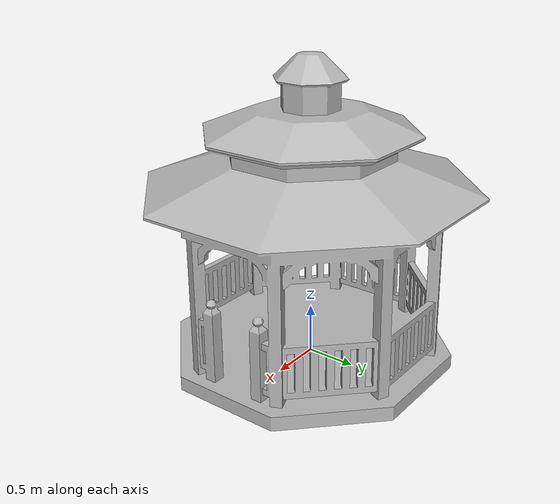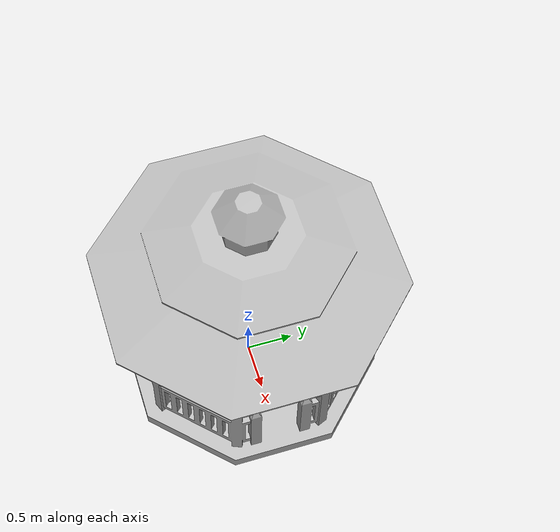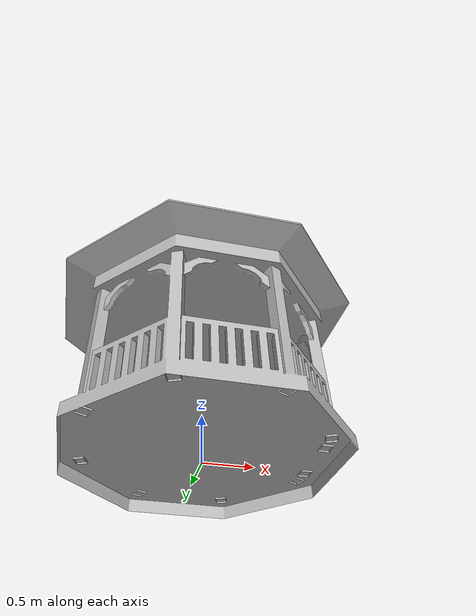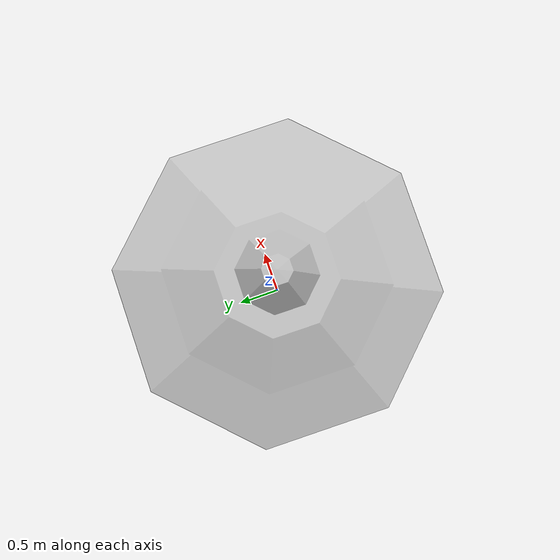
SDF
<?xml version="1.0" ?>
<sdf version="1.6">
  <model name="gazebo">
    <static>true</static>
    <link name="link">
      <collision name="collision">
        <geometry>
          <mesh>
            <scale>1.125 1.125 0.9375</scale>
            <uri>meshes/gazebo.dae</uri>
          </mesh>
        </geometry>
      </collision>
      <visual name="visual">
        <geometry>
          <mesh>
            <scale>1.125 1.125 0.9375</scale>
            <uri>meshes/gazebo.dae</uri>
          </mesh>
        </geometry>
      </visual>
    </link>
  </model>
</sdf>
